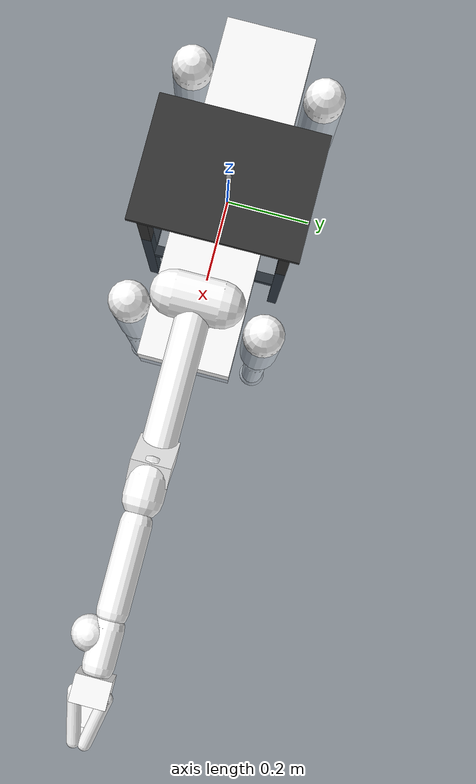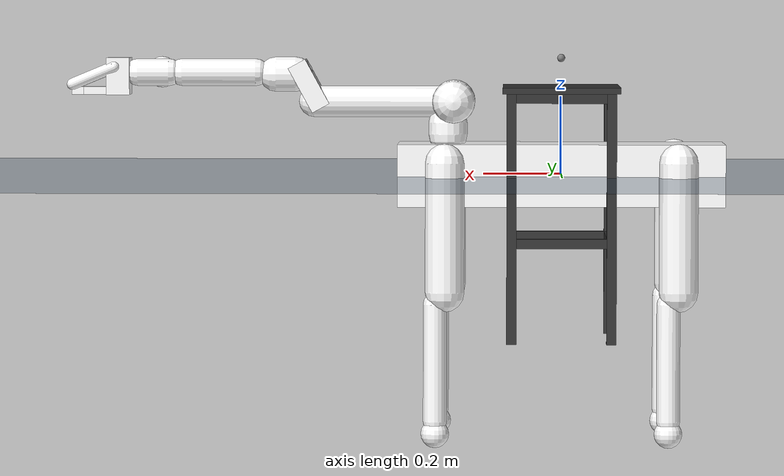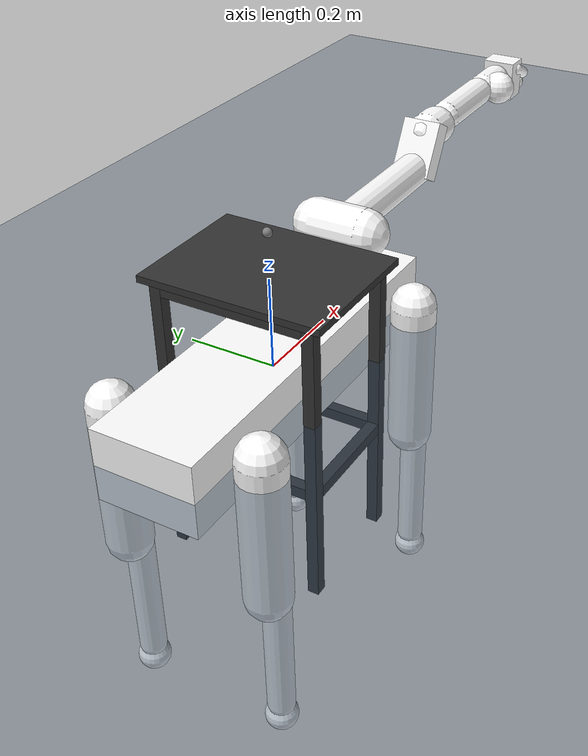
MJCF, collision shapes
<mujoco model="MuJoCo Model">
  <compiler angle="radian" meshdir="../../../../../dexterity/models/meshes/" texturedir="../../../../../dexterity/models/meshes/"/>

  <option timestep="0.01" density="1" integrator="implicitfast"/>

  <default>
    <default class="visual">
      <geom type="mesh" contype="0" conaffinity="0" group="2"/>
    </default>
    <default class="collision">
      <geom group="3" priority="4" friction="0.15" rgba="1 1 1 1"/>
    </default>
    <default class="ground/main">
      <default class="ground/visual">
        <geom type="mesh" contype="0" conaffinity="0" group="2"/>
      </default>
      <default class="ground/collision">
        <geom group="3" priority="4" friction="0.15" rgba="1 1 1 1"/>
      </default>
    </default>
    <default class="spot/main">
      <default class="spot/visual">
        <geom type="mesh" contype="0" conaffinity="0" group="2"/>
      </default>
      <default class="spot/collision">
        <geom group="3" priority="4" friction="0.15" rgba="1 1 1 1"/>
      </default>
      <default class="spot/base/main">
        <default class="spot/base/visual">
          <geom type="mesh" contype="0" conaffinity="0" group="2"/>
        </default>
        <default class="spot/base/collision">
          <geom group="3" priority="4" friction="0.15" rgba="1 1 1 1"/>
        </default>
        <default class="spot/base/base">
          <joint range="-3 3" damping="30"/>
          <general ctrlrange="-3 3" forcerange="-1000 1000" biastype="affine" gainprm="300" biasprm="0 -300"/>
        </default>
      </default>
      <default class="spot/legs/main">
        <default class="spot/legs/visual">
          <geom type="mesh" contype="0" conaffinity="0" group="2"/>
        </default>
        <default class="spot/legs/collision">
          <geom group="3" priority="4" friction="0.15" rgba="1 1 1 1"/>
        </default>
        <default class="spot/legs/leg">
          <default class="spot/legs/hip_x">
            <joint range="-0.785398 0.785398"/>
          </default>
          <default class="spot/legs/hip_y">
            <joint range="-0.898845 2.29511"/>
          </default>
          <default class="spot/legs/knee">
            <joint range="-2.7929 -0.254801"/>
          </default>
        </default>
      </default>
      <default class="spot/arm/main">
        <default class="spot/arm/visual">
          <geom type="mesh" contype="0" conaffinity="0" group="2"/>
        </default>
        <default class="spot/arm/collision">
          <geom group="3" priority="4" friction="0.15" rgba="1 1 1 1"/>
        </default>
        <default class="spot/arm/arm">
          <default class="spot/arm/arm_sh0">
            <joint range="-2.61799 3.14159" damping="51"/>
          </default>
          <default class="spot/arm/arm_sh1">
            <joint range="-3.14159 0.523599" damping="76.5"/>
          </default>
          <default class="spot/arm/arm_el0">
            <joint range="0 3.14159" damping="51"/>
          </default>
          <default class="spot/arm/arm_el1">
            <joint range="-2.79253 2.79253" damping="10.2"/>
          </default>
          <default class="spot/arm/arm_wr0">
            <joint range="-1.8326 1.8326" damping="10.2"/>
          </default>
          <default class="spot/arm/arm_wr1">
            <joint range="-2.87979 2.87979" damping="10.2"/>
          </default>
          <default class="spot/arm/arm_f1x">
            <joint range="-1.57 0" damping="1.6"/>
          </default>
        </default>
      </default>
    </default>
    <default class="object/main">
      <default class="object/visual">
        <geom type="mesh" contype="0" conaffinity="0" group="2"/>
      </default>
      <default class="object/collision">
        <geom group="3" priority="4" friction="0.15" rgba="1 1 1 1"/>
      </default>
    </default>
  </default>

  <asset>
    <texture type="2d" name="bdai_texture" file="spot/bdaii_spot_wrap.png"/>
    <texture type="2d" name="ground/bdai_texture" file="spot/bdaii_spot_wrap.png"/>
    <texture type="2d" name="ground/blue_grid" builtin="checker" mark="edge" rgb1="0.2 0.3 0.4" rgb2="0.1 0.2 0.3" markrgb="0.8 0.8 0.8" width="300" height="300"/>
    <texture type="2d" name="spot/bdai_texture" file="spot/bdaii_spot_wrap.png"/>
    <texture type="2d" name="spot/blue_grid" builtin="checker" mark="edge" rgb1="0.2 0.3 0.4" rgb2="0.1 0.2 0.3" markrgb="0.8 0.8 0.8" width="300" height="300"/>
    <texture type="2d" name="spot/base/bdai_texture" file="spot/bdaii_spot_wrap.png"/>
    <texture type="2d" name="spot/base/blue_grid" builtin="checker" mark="edge" rgb1="0.2 0.3 0.4" rgb2="0.1 0.2 0.3" markrgb="0.8 0.8 0.8" width="300" height="300"/>
    <texture type="2d" name="spot/legs/bdai_texture" file="spot/bdaii_spot_wrap.png"/>
    <texture type="2d" name="spot/legs/blue_grid" builtin="checker" mark="edge" rgb1="0.2 0.3 0.4" rgb2="0.1 0.2 0.3" markrgb="0.8 0.8 0.8" width="300" height="300"/>
    <texture type="2d" name="spot/arm/bdai_texture" file="spot/bdaii_spot_wrap.png"/>
    <texture type="2d" name="spot/arm/blue_grid" builtin="checker" mark="edge" rgb1="0.2 0.3 0.4" rgb2="0.1 0.2 0.3" markrgb="0.8 0.8 0.8" width="300" height="300"/>
    <texture type="2d" name="object/bdai_texture" file="spot/bdaii_spot_wrap.png"/>
    <texture type="2d" name="object/blue_grid" builtin="checker" mark="edge" rgb1="0.2 0.3 0.4" rgb2="0.1 0.2 0.3" markrgb="0.8 0.8 0.8" width="300" height="300"/>
    <material name="black" rgba="0.2 0.2 0.2 1"/>
    <material name="yellow" rgba="1 0.8 0.03 1"/>
    <material name="bdai" texture="bdai_texture" specular="1" shininess="11"/>
    <material name="ground/black" rgba="0.2 0.2 0.2 1"/>
    <material name="ground/yellow" rgba="1 0.8 0.03 1"/>
    <material name="ground/bdai" texture="ground/bdai_texture" specular="1" shininess="11"/>
    <material name="ground/blue_grid" texture="ground/blue_grid" texuniform="true" texrepeat="5 5" reflectance="0.2"/>
    <material name="spot/black" rgba="0.2 0.2 0.2 1"/>
    <material name="spot/yellow" rgba="1 0.8 0.03 1"/>
    <material name="spot/bdai" texture="spot/bdai_texture" specular="1" shininess="11"/>
    <material name="spot/blue_grid" texture="spot/blue_grid" texuniform="true" texrepeat="5 5" reflectance="0.2"/>
    <material name="spot/base/black" rgba="0.2 0.2 0.2 1"/>
    <material name="spot/base/yellow" rgba="1 0.8 0.03 1"/>
    <material name="spot/base/bdai" texture="spot/base/bdai_texture" specular="1" shininess="11"/>
    <material name="spot/base/blue_grid" texture="spot/base/blue_grid" texuniform="true" texrepeat="5 5" reflectance="0.2"/>
    <material name="spot/legs/black" rgba="0.2 0.2 0.2 1"/>
    <material name="spot/legs/yellow" rgba="1 0.8 0.03 1"/>
    <material name="spot/legs/bdai" texture="spot/legs/bdai_texture" specular="1" shininess="11"/>
    <material name="spot/legs/blue_grid" texture="spot/legs/blue_grid" texuniform="true" texrepeat="5 5" reflectance="0.2"/>
    <material name="spot/arm/black" rgba="0.2 0.2 0.2 1"/>
    <material name="spot/arm/yellow" rgba="1 0.8 0.03 1"/>
    <material name="spot/arm/bdai" texture="spot/arm/bdai_texture" specular="1" shininess="11"/>
    <material name="spot/arm/blue_grid" texture="spot/arm/blue_grid" texuniform="true" texrepeat="5 5" reflectance="0.2"/>
    <material name="object/black" rgba="0.2 0.2 0.2 1"/>
    <material name="object/yellow" rgba="1 0.8 0.03 1"/>
    <material name="object/bdai" texture="object/bdai_texture" specular="1" shininess="11"/>
    <material name="object/blue_grid" texture="object/blue_grid" texuniform="true" texrepeat="5 5" reflectance="0.2"/>
    <mesh name="spot/base/body" file="spot/base/collision/body_collision.obj"/>
    <mesh name="spot/base/body_0_visual" file="spot/base/visual/body_0.obj"/>
    <mesh name="spot/base/body_1_visual" file="spot/base/visual/body_1.obj"/>
    <mesh name="spot/legs/left_upper_leg_collision" file="spot/base/collision/left_upper_leg_collision.obj"/>
    <mesh name="spot/legs/left_lower_leg_collision" file="spot/base/collision/left_lower_leg_collision.obj"/>
    <mesh name="spot/legs/right_upper_leg_collision" file="spot/base/collision/right_upper_leg_collision.obj"/>
    <mesh name="spot/legs/right_lower_leg_collision" file="spot/base/collision/right_lower_leg_collision.obj"/>
    <mesh name="spot/legs/front_left_hip_visual" file="spot/base/visual/front_left_hip.obj"/>
    <mesh name="spot/legs/front_left_lower_leg_visual" file="spot/base/visual/front_left_lower_leg.obj"/>
    <mesh name="spot/legs/front_left_upper_leg_0_visual" file="spot/base/visual/front_left_upper_leg_0.obj"/>
    <mesh name="spot/legs/front_left_upper_leg_1_visual" file="spot/base/visual/front_left_upper_leg_1.obj"/>
    <mesh name="spot/legs/front_right_hip_visual" file="spot/base/visual/front_right_hip.obj"/>
    <mesh name="spot/legs/front_right_lower_leg_visual" file="spot/base/visual/front_right_lower_leg.obj"/>
    <mesh name="spot/legs/front_right_upper_leg_0_visual" file="spot/base/visual/front_right_upper_leg_0.obj"/>
    <mesh name="spot/legs/front_right_upper_leg_1_visual" file="spot/base/visual/front_right_upper_leg_1.obj"/>
    <mesh name="spot/legs/rear_left_hip_visual" file="spot/base/visual/rear_left_hip.obj"/>
    <mesh name="spot/legs/rear_left_lower_leg_visual" file="spot/base/visual/rear_left_lower_leg.obj"/>
    <mesh name="spot/legs/rear_left_upper_leg_0_visual" file="spot/base/visual/rear_left_upper_leg_0.obj"/>
    <mesh name="spot/legs/rear_left_upper_leg_1_visual" file="spot/base/visual/rear_left_upper_leg_1.obj"/>
    <mesh name="spot/legs/rear_right_hip_visual" file="spot/base/visual/rear_right_hip.obj"/>
    <mesh name="spot/legs/rear_right_lower_leg_visual" file="spot/base/visual/rear_right_lower_leg.obj"/>
    <mesh name="spot/legs/rear_right_upper_leg_0_visual" file="spot/base/visual/rear_right_upper_leg_0.obj"/>
    <mesh name="spot/legs/rear_right_upper_leg_1_visual" file="spot/base/visual/rear_right_upper_leg_1.obj"/>
    <mesh name="spot/arm/arm_link_sh0_base" file="spot/arm/collision/arm_link_sh0_base.obj"/>
    <mesh name="spot/arm/arm_link_sh0_left_motor" file="spot/arm/collision/arm_link_sh0_left_motor.obj"/>
    <mesh name="spot/arm/arm_link_sh0_right_motor" file="spot/arm/collision/arm_link_sh0_right_motor.obj"/>
    <mesh name="spot/arm/arm_link_sh1" file="spot/arm/collision/arm_link_sh1.obj"/>
    <mesh name="spot/arm/arm_link_el0" file="spot/arm/collision/arm_link_el0.obj"/>
    <mesh name="spot/arm/arm_link_el1" file="spot/arm/collision/arm_link_el1_main.obj"/>
    <mesh name="spot/arm/arm_link_el1_main" file="spot/arm/collision/arm_link_el1_main.obj"/>
    <mesh name="spot/arm/arm_link_el1_lip" file="spot/arm/collision/arm_link_el1_lip.obj"/>
    <mesh name="spot/arm/arm_link_wr0" file="spot/arm/collision/arm_link_wr0.obj"/>
    <mesh name="spot/arm/arm_link_wr1" file="spot/arm/collision/arm_link_wr1.obj"/>
    <mesh name="spot/arm/left_hinge" file="spot/gripper/collision/left_hinge.obj"/>
    <mesh name="spot/arm/left_finger" file="spot/gripper/collision/left_finger.obj"/>
    <mesh name="spot/arm/left_tooth" file="spot/gripper/collision/left_tooth.obj"/>
    <mesh name="spot/arm/right_hinge" file="spot/gripper/collision/right_hinge.obj"/>
    <mesh name="spot/arm/right_finger" file="spot/gripper/collision/right_finger.obj"/>
    <mesh name="spot/arm/right_tooth" file="spot/gripper/collision/right_tooth.obj"/>
    <mesh name="spot/arm/front_jaw" file="spot/gripper/collision/front_jaw.obj"/>
    <mesh name="spot/arm/middle_jaw" file="spot/gripper/collision/middle_jaw.obj"/>
    <mesh name="spot/arm/jaw_tooth" file="spot/gripper/collision/jaw_tooth.obj"/>
    <mesh name="spot/arm/arm_link_sh0_visual" file="spot/arm/visual/arm_link_sh0.obj"/>
    <mesh name="spot/arm/arm_link_sh1_0_visual" file="spot/arm/visual/arm_link_sh1_0.obj"/>
    <mesh name="spot/arm/arm_link_sh1_1_visual" file="spot/arm/visual/arm_link_sh1_1.obj"/>
    <mesh name="spot/arm/arm_link_el0_visual" file="spot/arm/visual/arm_link_el0.obj"/>
    <mesh name="spot/arm/arm_link_el1_0_visual" file="spot/arm/visual/arm_link_el1_0.obj"/>
    <mesh name="spot/arm/arm_link_el1_1_visual" file="spot/arm/visual/arm_link_el1_1.obj"/>
    <mesh name="spot/arm/arm_link_wr0_0_visual" file="spot/arm/visual/arm_link_wr0_0.obj"/>
    <mesh name="spot/arm/arm_link_wr0_1_visual" file="spot/arm/visual/arm_link_wr0_1.obj"/>
    <mesh name="spot/arm/arm_link_wr1_0_visual" file="spot/arm/visual/arm_link_wr1_0.obj"/>
    <mesh name="spot/arm/arm_link_wr1_1_visual" file="spot/arm/visual/arm_link_wr1_1.obj"/>
    <mesh name="spot/arm/arm_link_fngr_0_visual" file="spot/gripper/visual/arm_link_fngr_0.obj"/>
    <mesh name="spot/arm/arm_link_fngr_1_visual" file="spot/gripper/visual/arm_link_fngr_1.obj"/>
  </asset>

  <worldbody>
    <body name="ground">
      <geom name="ground/ground" size="2 2 0.01" type="plane" priority="5" friction="0.8" material="ground/blue_grid"/>
    </body>
    <body name="spot">
      <inertial pos="0 0 -0.00496172" quat="0 0.707107 0 0.707107" mass="16.7077" diaginertia="0.569454 0.549231 0.0815438"/>
      <joint name="spot/base/base" type="free" limited="false" actuatorfrclimited="false"/>
      <geom name="spot/base/body_0_visual" class="spot/base/visual" material="spot/base/black" mesh="spot/base/body_0_visual"/>
      <geom name="spot/base/body_1_visual" class="spot/base/visual" material="spot/base/yellow" mesh="spot/base/body_1_visual"/>
      <geom name="spot/base/body" class="spot/base/collision" size="0.42 0.11 0.08" type="box"/>
      <site name="spot/base/site_body" pos="0 0 0.3" size="0.01"/>
      <body name="spot/legs">
        <body name="spot/legs/front_left_hip" pos="0.29785 0.055 0">
          <inertial pos="-0.0158674 0.00855842 9.03e-06" quat="-0.137996 0.694859 0.131743 0.693377" mass="1.13688" diaginertia="0.00172904 0.00166127 0.00114996"/>
          <joint name="spot/legs/joint_front_left_hip_x" class="spot/legs/hip_x" pos="0 0 0" axis="1 0 0"/>
          <geom name="spot/legs/front_left_hip_visual" class="spot/legs/visual" material="spot/legs/black" mesh="spot/legs/front_left_hip_visual"/>
          <body name="spot/legs/front_left_upper_leg" pos="0 0.110945 0">
            <inertial pos="0.00214442 -0.0111018 -0.078812" quat="0.998684 0.0454551 -0.0106253 -0.0212473" mass="2.2562" diaginertia="0.0269394 0.0260254 0.00298666"/>
            <joint name="spot/legs/joint_front_left_hip_y" class="spot/legs/hip_y" pos="0 0 0" axis="0 1 0" range="-0.898845 2.29511"/>
            <geom name="spot/legs/front_left_upper_leg_0_visual" class="spot/legs/visual" material="spot/legs/yellow" mesh="spot/legs/front_left_upper_leg_0_visual"/>
            <geom name="spot/legs/front_left_upper_leg_1_visual" class="spot/legs/visual" material="spot/legs/black" mesh="spot/legs/front_left_upper_leg_1_visual"/>
            <geom name="spot/legs/front_left_upper_leg_main" class="spot/legs/collision" size="0.05 0.165" pos="0 0 -0.13" type="capsule"/>
            <body name="spot/legs/front_left_lower_leg" pos="0.025 0 -0.3205">
              <inertial pos="0.0059736 0 -0.174664" quat="0.707099 -0.00339701 -0.00339701 0.707099" mass="0.33" diaginertia="0.00709946 0.00701419 0.000144656"/>
              <joint name="spot/legs/joint_front_left_knee" class="spot/legs/knee" pos="0 0 0" axis="0 1 0" range="-2.7929 -0.2471"/>
              <geom name="spot/legs/front_left_lower_leg_visual" class="spot/legs/visual" material="spot/legs/black" mesh="spot/legs/front_left_lower_leg_visual"/>
              <geom name="spot/legs/front_left_lower_leg_main" class="spot/legs/collision" size="0.03 0.15" pos="0 0 -0.155" type="capsule"/>
              <geom name="spot/legs/front_left_foot" class="spot/legs/collision" size="0.036" pos="0 0 -0.3365"/>
              <site name="spot/legs/site_front_left" pos="0 0 -0.3365" size="0.01"/>
            </body>
          </body>
        </body>
        <body name="spot/legs/front_right_hip" pos="0.29785 -0.055 0">
          <inertial pos="-0.0158674 -0.00855842 9.03e-06" quat="0.137996 0.694859 -0.131743 0.693377" mass="1.13688" diaginertia="0.00172904 0.00166127 0.00114996"/>
          <joint name="spot/legs/joint_front_right_hip_x" class="spot/legs/hip_x" pos="0 0 0" axis="1 0 0"/>
          <geom name="spot/legs/front_right_hip_visual" class="spot/legs/visual" material="spot/legs/black" mesh="spot/legs/front_right_hip_visual"/>
          <body name="spot/legs/front_right_upper_leg" pos="0 -0.110945 0">
            <inertial pos="0.00214442 0.0111018 -0.078812" quat="0.998684 -0.0454551 -0.0106253 0.0212473" mass="2.2562" diaginertia="0.0269394 0.0260254 0.00298666"/>
            <joint name="spot/legs/joint_front_right_hip_y" class="spot/legs/hip_y" pos="0 0 0" axis="0 1 0" range="-0.898845 2.29511"/>
            <geom name="spot/legs/front_right_upper_leg_0_visual" class="spot/legs/visual" material="spot/legs/yellow" mesh="spot/legs/front_right_upper_leg_0_visual"/>
            <geom name="spot/legs/front_right_upper_leg_1_visual" class="spot/legs/visual" material="spot/legs/black" mesh="spot/legs/front_right_upper_leg_1_visual"/>
            <geom name="spot/legs/front_right_upper_leg_main" class="spot/legs/collision" size="0.05 0.165" pos="0 0 -0.13" type="capsule"/>
            <body name="spot/legs/front_right_lower_leg" pos="0.025 0 -0.3205">
              <inertial pos="0.0059736 0 -0.174664" quat="0.707099 -0.00339701 -0.00339701 0.707099" mass="0.33" diaginertia="0.00709946 0.00701419 0.000144656"/>
              <joint name="spot/legs/joint_front_right_knee" class="spot/legs/knee" pos="0 0 0" axis="0 1 0" range="-2.7929 -0.2471"/>
              <geom name="spot/legs/front_right_lower_leg_visual" class="spot/legs/visual" material="spot/legs/black" mesh="spot/legs/front_right_lower_leg_visual"/>
              <geom name="spot/legs/front_right_lower_leg_main" class="spot/legs/collision" size="0.03 0.15" pos="0 0 -0.155" type="capsule"/>
              <geom name="spot/legs/front_right_foot" class="spot/legs/collision" size="0.036" pos="0 0 -0.3365"/>
              <site name="spot/legs/site_front_right" pos="0 0 -0.3365" size="0.01"/>
            </body>
          </body>
        </body>
        <body name="spot/legs/rear_left_hip" pos="-0.29785 0.055 0">
          <inertial pos="0.0158674 0.00855842 9.03e-06" quat="0.131743 0.693377 -0.137996 0.694859" mass="1.13688" diaginertia="0.00172904 0.00166127 0.00114996"/>
          <joint name="spot/legs/joint_rear_left_hip_x" class="spot/legs/hip_x" pos="0 0 0" axis="1 0 0"/>
          <geom name="spot/legs/rear_left_hip_visual" class="spot/legs/visual" material="spot/legs/black" mesh="spot/legs/rear_left_hip_visual"/>
          <body name="spot/legs/rear_left_upper_leg" pos="0 0.110945 0">
            <inertial pos="0.00214442 -0.0111018 -0.078812" quat="0.998684 0.0454551 -0.0106253 -0.0212473" mass="2.2562" diaginertia="0.0269394 0.0260254 0.00298666"/>
            <joint name="spot/legs/joint_rear_left_hip_y" class="spot/legs/hip_y" pos="0 0 0" axis="0 1 0" range="-0.898845 2.29511"/>
            <geom name="spot/legs/rear_left_upper_leg_0_visual" class="spot/legs/visual" material="spot/legs/yellow" mesh="spot/legs/rear_left_upper_leg_0_visual"/>
            <geom name="spot/legs/rear_left_upper_leg_1_visual" class="spot/legs/visual" material="spot/legs/black" mesh="spot/legs/rear_left_upper_leg_1_visual"/>
            <geom name="spot/legs/rear_left_upper_leg_main" class="spot/legs/collision" size="0.05 0.165" pos="0 0 -0.13" type="capsule"/>
            <body name="spot/legs/rear_left_lower_leg" pos="0.025 0 -0.3205">
              <inertial pos="0.0059736 0 -0.174664" quat="0.707099 -0.00339701 -0.00339701 0.707099" mass="0.33" diaginertia="0.00709946 0.00701419 0.000144656"/>
              <joint name="spot/legs/joint_rear_left_knee" class="spot/legs/knee" pos="0 0 0" axis="0 1 0" range="-2.7929 -0.2471"/>
              <geom name="spot/legs/rear_left_lower_leg_visual" class="spot/legs/visual" material="spot/legs/black" mesh="spot/legs/rear_left_lower_leg_visual"/>
              <geom name="spot/legs/rear_left_lower_leg_main" class="spot/legs/collision" size="0.03 0.15" pos="0 0 -0.155" type="capsule"/>
              <geom name="spot/legs/rear_left_foot" class="spot/legs/collision" size="0.036" pos="0 0 -0.3365"/>
              <site name="spot/legs/site_rear_left" pos="0 0 -0.3365" size="0.01"/>
            </body>
          </body>
        </body>
        <body name="spot/legs/rear_right_hip" pos="-0.29785 -0.055 0">
          <inertial pos="0.0158674 -0.00855842 9.03e-06" quat="-0.131743 0.693377 0.137996 0.694859" mass="1.13688" diaginertia="0.00172904 0.00166127 0.00114996"/>
          <joint name="spot/legs/joint_rear_right_hip_x" class="spot/legs/hip_x" pos="0 0 0" axis="1 0 0"/>
          <geom name="spot/legs/rear_right_hip_visual" class="spot/legs/visual" material="spot/legs/black" mesh="spot/legs/rear_right_hip_visual"/>
          <body name="spot/legs/rear_right_upper_leg" pos="0 -0.110945 0">
            <inertial pos="0.00214442 0.0111018 -0.078812" quat="0.998684 -0.0454551 -0.0106253 0.0212473" mass="2.2562" diaginertia="0.0269394 0.0260254 0.00298666"/>
            <joint name="spot/legs/joint_rear_right_hip_y" class="spot/legs/hip_y" pos="0 0 0" axis="0 1 0" range="-0.898845 2.29511"/>
            <geom name="spot/legs/rear_right_upper_leg_0_visual" class="spot/legs/visual" material="spot/legs/yellow" mesh="spot/legs/rear_right_upper_leg_0_visual"/>
            <geom name="spot/legs/rear_right_upper_leg_1_visual" class="spot/legs/visual" material="spot/legs/black" mesh="spot/legs/rear_right_upper_leg_1_visual"/>
            <geom name="spot/legs/rear_right_upper_leg_main" class="spot/legs/collision" size="0.05 0.165" pos="0 0 -0.13" type="capsule"/>
            <body name="spot/legs/rear_right_lower_leg" pos="0.025 0 -0.3205">
              <inertial pos="0.0059736 0 -0.174664" quat="0.707099 -0.00339701 -0.00339701 0.707099" mass="0.33" diaginertia="0.00709946 0.00701419 0.000144656"/>
              <joint name="spot/legs/joint_rear_right_knee" class="spot/legs/knee" pos="0 0 0" axis="0 1 0" range="-2.7929 -0.2471"/>
              <geom name="spot/legs/rear_right_lower_leg_visual" class="spot/legs/visual" material="spot/legs/black" mesh="spot/legs/rear_right_lower_leg_visual"/>
              <geom name="spot/legs/rear_right_lower_leg_main" class="spot/legs/collision" size="0.03 0.15" pos="0 0 -0.155" type="capsule"/>
              <geom name="spot/legs/rear_right_foot" class="spot/legs/collision" size="0.036" pos="0 0 -0.3365"/>
              <site name="spot/legs/site_rear_right" pos="0 0 -0.3365" size="0.01"/>
            </body>
          </body>
        </body>
      </body>
      <body name="spot/arm">
        <body name="spot/arm/arm_link_sh0" pos="0.292 0 0.188" gravcomp="1">
          <inertial pos="-0.008399 0.000272 -0.024603" quat="0.710827 0.700855 0.0423863 -0.0416066" mass="1.9047" diaginertia="0.00891905 0.00728042 0.00492153"/>
          <joint name="spot/arm/arm_sh0" class="spot/arm/arm_sh0" pos="0 0 0" axis="0 0 1"/>
          <geom name="spot/arm/arm_link_sh0_visual" class="spot/arm/visual" material="spot/arm/black" mesh="spot/arm/arm_link_sh0_visual"/>
          <geom name="spot/arm/arm_link_sh0_base" class="spot/arm/collision" size="0.05 0.015" pos="0 0 -0.07" type="capsule"/>
          <geom name="spot/arm/arm_link_sh0_motor" class="spot/arm/collision" size="0.055 0.055" pos="-0.015 0 0" quat="0.707107 0.707107 0 0" type="capsule"/>
          <site name="spot/arm/site_arm_link_sh0" pos="0 0 0" size="0.01"/>
          <body name="spot/arm/arm_link_sh1" gravcomp="1">
            <inertial pos="0.0808491 -0.00167243 0.00045644" quat="-0.00467017 0.708456 0.00702831 0.705705" mass="1.85702" diaginertia="0.0281997 0.0270454 0.00260818"/>
            <joint name="spot/arm/arm_sh1" class="spot/arm/arm_sh1" pos="0 0 0" axis="0 1 0"/>
            <geom name="spot/arm/arm_link_sh1_0_visual" class="spot/arm/visual" material="spot/arm/yellow" mesh="spot/arm/arm_link_sh1_0_visual"/>
            <geom name="spot/arm/arm_link_sh1_1_visual" class="spot/arm/visual" material="spot/arm/black" mesh="spot/arm/arm_link_sh1_1_visual"/>
            <geom name="spot/arm/arm_link_sh1" class="spot/arm/collision" size="0.04 0.175" pos="0.17 0 0" quat="0.707107 0 0.707107 0" type="capsule"/>
            <site name="spot/arm/site_arm_link_sh1" pos="0 0 0" size="0.01"/>
            <body name="spot/arm/arm_link_el0" pos="0.3385 0 0" gravcomp="1">
              <inertial pos="0.0447662 -0.0027113 0.0499136" quat="0.0923782 0.888458 0.19384 0.40563" mass="0.94832" diaginertia="0.00286401 0.00265579 0.000960161"/>
              <joint name="spot/arm/arm_el0" class="spot/arm/arm_el0" pos="0 0 0" axis="0 1 0"/>
              <geom name="spot/arm/arm_link_el0_visual" class="spot/arm/visual" material="spot/arm/black" mesh="spot/arm/arm_link_el0_visual"/>
              <geom name="spot/arm/arm_link_el0_joint" class="spot/arm/collision" size="0.025 0.045 0.065" pos="0.02 0 0.04" quat="0.968912 0 0.247404 0" type="box"/>
              <geom name="spot/arm/arm_link_el0_body" class="spot/arm/collision" size="0.045 0.025" pos="0.08 0 0.07" quat="0.707107 0 0.707107 0" type="capsule"/>
              <site name="spot/arm/site_arm_link_el0" pos="0 0 0" size="0.01"/>
              <body name="spot/arm/arm_link_el1" pos="0.4033 0 0.075" gravcomp="1">
                <inertial pos="-0.168671 -0.0161612 1.149e-05" quat="0.488034 0.425158 0.565043 0.511654" mass="1.01755" diaginertia="0.0169253 0.0168986 0.000746021"/>
                <joint name="spot/arm/arm_el1" class="spot/arm/arm_el1" pos="0 0 0" axis="1 0 0"/>
                <geom name="spot/arm/arm_link_el1_0_visual" class="spot/arm/visual" material="spot/arm/yellow" mesh="spot/arm/arm_link_el1_0_visual"/>
                <geom name="spot/arm/arm_link_el1_1_visual" class="spot/arm/visual" material="spot/arm/black" mesh="spot/arm/arm_link_el1_1_visual"/>
                <geom name="spot/arm/arm_link_el1" class="spot/arm/collision" size="0.035 0.095" pos="-0.15 0 0" quat="0.707107 0 0.707107 0" type="capsule"/>
                <geom name="spot/arm/arm_link_el1_knob" class="spot/arm/collision" size="0.04" pos="0 -0.035 0"/>
                <site name="spot/arm/site_arm_link_el1" pos="0 0 0" size="0.01"/>
                <body name="spot/arm/arm_link_wr0" gravcomp="1">
                  <inertial pos="0.00952465 -0.0114441 1.86e-06" quat="0.308237 0.652328 -0.273781 0.636005" mass="0.582637" diaginertia="0.000536182 0.000528639 0.000388399"/>
                  <joint name="spot/arm/arm_wr0" class="spot/arm/arm_wr0" pos="0 0 0" axis="0 1 0"/>
                  <geom name="spot/arm/arm_link_wr0_0_visual" class="spot/arm/visual" material="spot/arm/yellow" mesh="spot/arm/arm_link_wr0_0_visual"/>
                  <geom name="spot/arm/arm_link_wr0_1_visual" class="spot/arm/visual" material="spot/arm/black" mesh="spot/arm/arm_link_wr0_1_visual"/>
                  <geom name="spot/arm/arm_link_wr0" class="spot/arm/collision" size="0.035 0.04" pos="0.02 0 0" quat="0.707107 0 0.707107 0" type="capsule"/>
                  <site name="spot/arm/site_arm_link_wr0" pos="0 0 0" size="0.01"/>
                  <body name="spot/arm/arm_link_wr1" gravcomp="1">
                    <inertial pos="0.0975128 9.265e-05 -0.0112052" quat="0.592778 0.385047 0.386229 0.592605" mass="0.933353" diaginertia="0.00197018 0.00182151 0.00082476"/>
                    <joint name="spot/arm/arm_wr1" class="spot/arm/arm_wr1" pos="0 0 0" axis="1 0 0"/>
                    <geom name="spot/arm/arm_link_wr1_0_visual" class="spot/arm/visual" material="spot/arm/yellow" mesh="spot/arm/arm_link_wr1_0_visual"/>
                    <geom name="spot/arm/arm_link_wr1_1_visual" class="spot/arm/visual" material="spot/arm/black" mesh="spot/arm/arm_link_wr1_1_visual"/>
                    <geom name="spot/arm/arm_link_wr1" class="spot/arm/collision" size="0.03 0.04 0.0475" pos="0.11 0 -0.01" type="box"/>
                    <geom name="spot/arm/bottom_jaw" class="spot/arm/collision" size="0.03 0.025 0.01" pos="0.17 0 -0.0475" type="box"/>
                    <geom name="spot/arm/front_jaw" class="spot/arm/collision" size="0.016 0.015 0.01" pos="0.215 0 -0.0475" type="box"/>
                    <geom name="spot/arm/front_jaw_tooth" class="spot/arm/collision" size="0.005 0.01 0.005" pos="0.224 0 -0.039" quat="0.877583 0 0.479426 0" type="box"/>
                    <site name="spot/arm/site_arm_link_wr1" pos="0 0 0" size="0.01"/>
                    <body name="spot/arm/arm_link_fngr" pos="0.11745 0 0.01482" gravcomp="1">
                      <inertial pos="0.0356518 0.000672 -0.0122752" quat="0.00481109 0.567709 0.0124565 0.823121" mass="0.223833" diaginertia="0.000648792 0.000484516 0.000194933"/>
                      <joint name="spot/arm/arm_f1x" class="spot/arm/arm_f1x" pos="0 0 0" axis="0 1 0"/>
                      <geom name="spot/arm/arm_link_fngr_0_visual" class="spot/arm/visual" material="spot/arm/yellow" mesh="spot/arm/arm_link_fngr_0_visual"/>
                      <geom name="spot/arm/arm_link_fngr_1_visual" class="spot/arm/visual" material="spot/arm/black" mesh="spot/arm/arm_link_fngr_1_visual"/>
                      <geom name="spot/arm/left_jaw" class="spot/arm/collision" size="0.015 0.06" pos="0.057 0.023 -0.023" quat="0.526684 -0.120545 0.820261 -0.187738" type="capsule"/>
                      <geom name="spot/arm/right_jaw" class="spot/arm/collision" size="0.015 0.06" pos="0.057 -0.023 -0.023" quat="0.526684 0.120545 0.820261 0.187738" type="capsule"/>
                      <site name="spot/arm/site_arm_link_fngr" pos="0 0 0" size="0.01"/>
                    </body>
                  </body>
                </body>
              </body>
            </body>
          </body>
        </body>
      </body>
    </body>
    <body name="object">
      <joint name="object/stool_joint" type="free" limited="false" actuatorfrclimited="false"/>
      <site name="object/site_object" pos="0 0 0.22" size="0.01"/>
      <body name="object/metal_frames">
        <geom name="object/surface_box" size="0.15 0.2 0.0075" pos="0 0 0.22" type="box" mass="0.88" material="object/black"/>
        <geom name="object/leg_1" size="0.0125 0.0125 0.32" pos="0.1275 0.1675 -0.1075" type="box" mass="0.361" material="object/black"/>
        <geom name="object/leg_2" size="0.0125 0.0125 0.32" pos="0.1275 -0.1675 -0.1075" type="box" mass="0.361" material="object/black"/>
        <geom name="object/leg_3" size="0.0125 0.0125 0.32" pos="-0.1275 0.1675 -0.1075" type="box" mass="0.361" material="object/black"/>
        <geom name="object/leg_4" size="0.0125 0.0125 0.32" pos="-0.1275 -0.1675 -0.1075" type="box" mass="0.361" material="object/black"/>
        <geom name="object/upper_beam_1" size="0.115 0.0125 0.0125" pos="0 0.1675 0.2" type="box" mass="0.13" material="object/black"/>
        <geom name="object/upper_beam_2" size="0.0125 0.155 0.0125" pos="0.1275 0 0.2" type="box" mass="0.175" material="object/black"/>
        <geom name="object/upper_beam_3" size="0.0125 0.155 0.0125" pos="-0.1275 0 0.2" type="box" mass="0.175" material="object/black"/>
        <geom name="object/upper_beam_4" size="0.115 0.0125 0.0125" pos="0 -0.1675 0.2" type="box" mass="0.13" material="object/black"/>
        <geom name="object/lower_beam_1" size="0.115 0.0125 0.0125" pos="0 0.1675 -0.17" type="box" mass="0.13" material="object/black"/>
        <geom name="object/lower_beam_2" size="0.0125 0.155 0.0125" pos="0.1275 0 -0.17" type="box" mass="0.175" material="object/black"/>
        <geom name="object/lower_beam_3" size="0.0125 0.155 0.0125" pos="-0.1275 0 -0.17" type="box" mass="0.175" material="object/black"/>
        <geom name="object/lower_beam_4" size="0.115 0.0125 0.0125" pos="0 -0.1675 -0.17" type="box" mass="0.13" material="object/black"/>
        <geom name="object/leg_extra_1" size="0.01 0.01 0.02" pos="0.1275 0.1675 -0.3975" type="box" mass="0.119" material="object/black"/>
        <geom name="object/leg_extra_2" size="0.01 0.01 0.02" pos="0.1275 -0.1675 -0.3975" type="box" mass="0.119" material="object/black"/>
        <geom name="object/leg_extra_3" size="0.01 0.01 0.02" pos="-0.1275 0.1675 -0.3975" type="box" mass="0.119" material="object/black"/>
        <geom name="object/leg_extra_4" size="0.01 0.01 0.02" pos="-0.1275 -0.1675 -0.3975" type="box" mass="0.119" material="object/black"/>
      </body>
    </body>
  </worldbody>

  <contact>
    <exclude body1="spot" body2="spot/legs/front_left_upper_leg"/>
    <exclude body1="spot" body2="spot/legs/front_right_upper_leg"/>
    <exclude body1="spot" body2="spot/legs/rear_left_upper_leg"/>
    <exclude body1="spot" body2="spot/legs/rear_right_upper_leg"/>
    <exclude body1="spot/arm/arm_link_sh0" body2="spot/arm/arm_link_el1"/>
    <exclude body1="spot/arm/arm_link_sh1" body2="spot/arm/arm_link_el0"/>
    <exclude body1="spot/arm/arm_link_sh1" body2="spot/arm/arm_link_el1"/>
  </contact>

  <actuator>
    <general name="spot/legs/act_fl1" joint="spot/legs/joint_front_left_hip_x" ctrlrange="-0.785398 0.785398" forcerange="-45 45" biastype="affine" gainprm="60" biasprm="0 -60 -1.5"/>
    <general name="spot/legs/act_fl2" joint="spot/legs/joint_front_left_hip_y" ctrlrange="-0.898845 2.29511" forcerange="-45 45" biastype="affine" gainprm="60" biasprm="0 -60 -1.5"/>
    <general name="spot/legs/act_fl3" joint="spot/legs/joint_front_left_knee" ctrlrange="-2.7929 -0.254801" forcerange="-115 115" biastype="affine" gainprm="60" biasprm="0 -60 -1.5"/>
    <general name="spot/legs/act_fr1" joint="spot/legs/joint_front_right_hip_x" ctrlrange="-0.785398 0.785398" forcerange="-45 45" biastype="affine" gainprm="60" biasprm="0 -60 -1.5"/>
    <general name="spot/legs/act_fr2" joint="spot/legs/joint_front_right_hip_y" ctrlrange="-0.898845 2.29511" forcerange="-45 45" biastype="affine" gainprm="60" biasprm="0 -60 -1.5"/>
    <general name="spot/legs/act_fr3" joint="spot/legs/joint_front_right_knee" ctrlrange="-2.7929 -0.254801" forcerange="-115 115" biastype="affine" gainprm="60" biasprm="0 -60 -1.5"/>
    <general name="spot/legs/act_rl1" joint="spot/legs/joint_rear_left_hip_x" ctrlrange="-0.785398 0.785398" forcerange="-45 45" biastype="affine" gainprm="60" biasprm="0 -60 -1.5"/>
    <general name="spot/legs/act_rl2" joint="spot/legs/joint_rear_left_hip_y" ctrlrange="-0.898845 2.29511" forcerange="-45 45" biastype="affine" gainprm="60" biasprm="0 -60 -1.5"/>
    <general name="spot/legs/act_rl3" joint="spot/legs/joint_rear_left_knee" ctrlrange="-2.7929 -0.254801" forcerange="-115 115" biastype="affine" gainprm="60" biasprm="0 -60 -1.5"/>
    <general name="spot/legs/act_rr1" joint="spot/legs/joint_rear_right_hip_x" ctrlrange="-0.785398 0.785398" forcerange="-45 45" biastype="affine" gainprm="60" biasprm="0 -60 -1.5"/>
    <general name="spot/legs/act_rr2" joint="spot/legs/joint_rear_right_hip_y" ctrlrange="-0.898845 2.29511" forcerange="-45 45" biastype="affine" gainprm="60" biasprm="0 -60 -1.5"/>
    <general name="spot/legs/act_rr3" joint="spot/legs/joint_rear_right_knee" ctrlrange="-2.7929 -0.254801" forcerange="-115 115" biastype="affine" gainprm="60" biasprm="0 -60 -1.5"/>
    <general name="spot/arm/act_3" joint="spot/arm/arm_sh0" ctrlrange="-2.61799 3.14159" forcerange="-90.9 90" biastype="affine" gainprm="1020" biasprm="0 -1020"/>
    <general name="spot/arm/act_4" joint="spot/arm/arm_sh1" ctrlrange="-3.14159 0.523599" forcerange="-181.8 181.8" biastype="affine" gainprm="255" biasprm="0 -255"/>
    <general name="spot/arm/act_5" joint="spot/arm/arm_el0" ctrlrange="0 3.14159" forcerange="-90.9 90" biastype="affine" gainprm="204" biasprm="0 -204"/>
    <general name="spot/arm/act_6" joint="spot/arm/arm_el1" ctrlrange="-2.79253 2.79253" forcerange="-30.3 30.3" biastype="affine" gainprm="102" biasprm="0 -102"/>
    <general name="spot/arm/act_7" joint="spot/arm/arm_wr0" ctrlrange="-1.8326 1.8326" forcerange="-30.9 30" biastype="affine" gainprm="102" biasprm="0 -102"/>
    <general name="spot/arm/act_8" joint="spot/arm/arm_wr1" ctrlrange="-2.87979 2.87979" forcerange="-30.9 30" biastype="affine" gainprm="102" biasprm="0 -102"/>
    <general name="spot/arm/act_9" joint="spot/arm/arm_f1x" ctrlrange="-1.57 0" forcerange="-15.32 15.32" biastype="affine" gainprm="16" biasprm="0 -16"/>
  </actuator>

  <sensor>
    <framepos objtype="site" objname="spot/base/site_body" reftype="site" refname="object/site_object" name="scene_sensor_body"/>
    <frameyaxis objtype="site" objname="object/site_object" name="scene_sensor_object_y_axis"/>
    <framepos objtype="site" objname="spot/arm/site_arm_link_fngr" reftype="site" refname="object/site_object" name="scene_sensor_fngr_obj"/>
    <framepos objtype="site" objname="spot/base/site_body" name="scene_trace_body"/>
    <framepos objtype="site" objname="spot/arm/site_arm_link_fngr" name="scene_trace_gripper"/>
  </sensor>
</mujoco>
